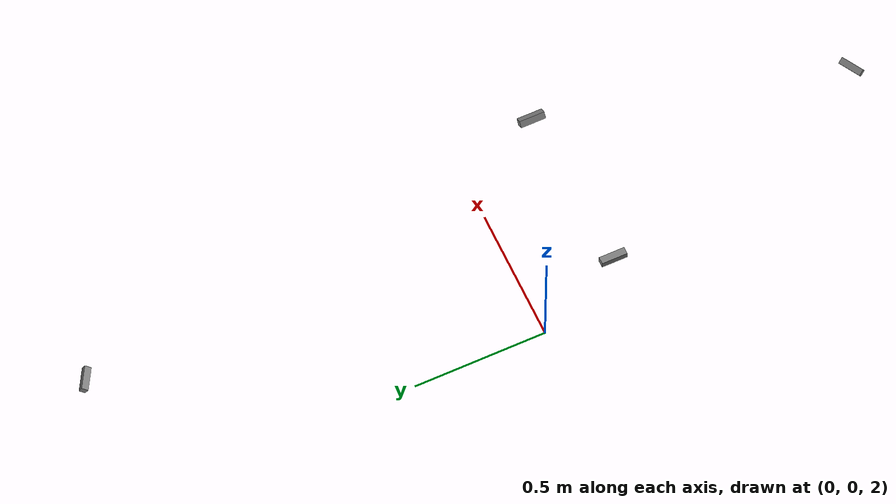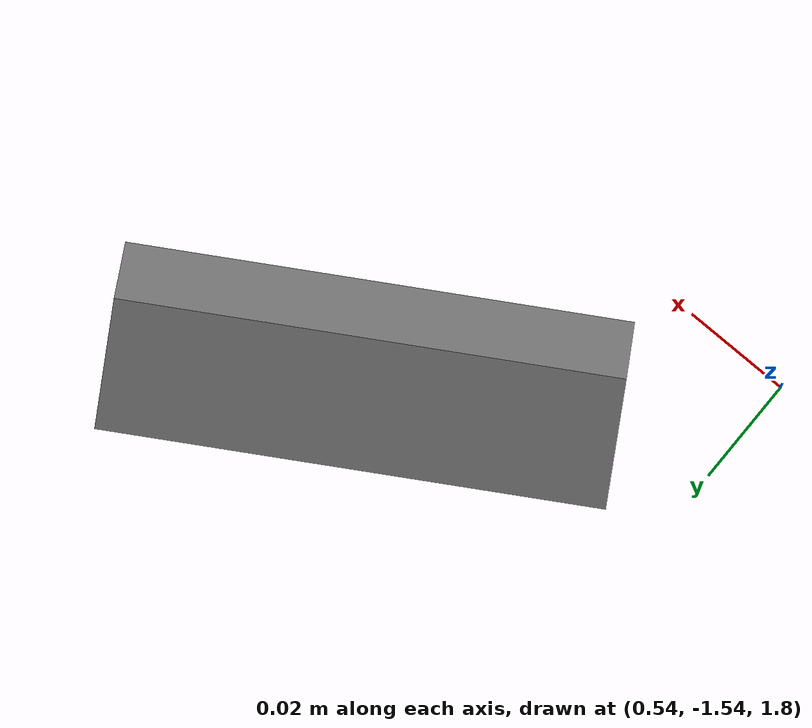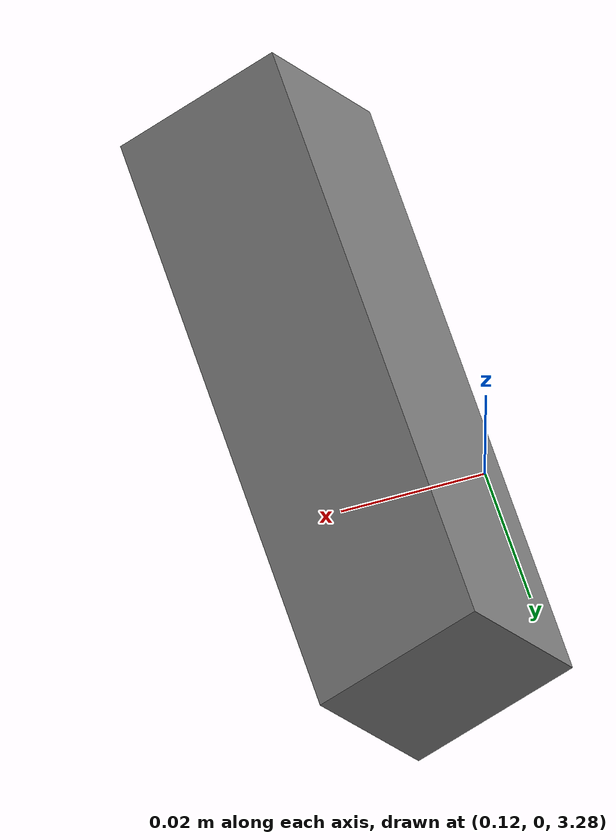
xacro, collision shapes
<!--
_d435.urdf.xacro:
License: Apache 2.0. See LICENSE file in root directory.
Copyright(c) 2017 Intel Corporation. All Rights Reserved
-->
<?xml version="1.0"?>
<robot name="triple_camera_set" xmlns:xacro="http://ros.org/wiki/xacro">
  <xacro:arg name="use_nominal_extrinsics" default="false"/>
  <xacro:arg name="add_plug" default="false" />
  <xacro:arg name="use_mesh" default="true" />
  <xacro:arg name="publish_pointcloud" default="true" />
  <xacro:include filename="$(find realsense_gazebo_plugin)/urdf/_d435.urdf.xacro" />

  <link name="world" />
  <joint name="world_joint" type="fixed">
     <parent link="world" />
     <child link = "base_link" />
     <origin xyz="0.0 0.0 0.0" rpy="0.0 0.0 0.0" />
  </joint>
  <link name="base_link" />

  <!-- left camera -->
  <xacro:sensor_d435 parent="base_link" name="camera_left" topics_ns="camera_left" use_nominal_extrinsics="$(arg use_nominal_extrinsics)" add_plug="$(arg add_plug)" use_mesh="$(arg use_mesh)" publish_pointcloud="$(arg publish_pointcloud)">
    <origin xyz="0.6 -1.5  1.8" rpy="0.0 0.45 2.1"/>
  </xacro:sensor_d435>

  <!-- right camera -->
  <xacro:sensor_d435 parent="base_link" name="camera_right" topics_ns="camera_right" use_nominal_extrinsics="$(arg use_nominal_extrinsics)" add_plug="$(arg add_plug)" use_mesh="$(arg use_mesh)" publish_pointcloud="$(arg publish_pointcloud)">
    <origin xyz="0.6 1.5 1.8" rpy="0.0 0.45 -2.1"/>
  </xacro:sensor_d435>

  <!-- top camera -->
  <xacro:sensor_d435 parent="base_link" name="camera_top" topics_ns="camera_top" use_nominal_extrinsics="$(arg use_nominal_extrinsics)" add_plug="$(arg add_plug)" use_mesh="$(arg use_mesh)" publish_pointcloud="$(arg publish_pointcloud)">
    <origin xyz="-0.5 0 3.4" rpy="0 1.57 0"/>
  </xacro:sensor_d435>

  <!-- top front camera -->
  <xacro:sensor_d435 parent="base_link" name="camera_top_front" topics_ns="camera_top_front" use_nominal_extrinsics="$(arg use_nominal_extrinsics)" add_plug="$(arg add_plug)" use_mesh="$(arg use_mesh)" publish_pointcloud="$(arg publish_pointcloud)">
    <origin xyz="0.15 0 3.3" rpy="0 1.0 -3.14"/>
  </xacro:sensor_d435>

  <gazebo>
    <!-- plugin to publish GT 3D bounding boxes to env node -->
    <plugin filename="libgazebo_ros_bbox_3d_plugin.so " name="gazebo_ros_bbox_3d_plugin">
      <updatePeriod>1.0</updatePeriod>
      <links_to_publish>
        <link>cabinet::drawer_0</link>
        <link>cabinet::drawer_1</link>
        <link>cabinet::drawer_2</link>
        <link>cabinet::drawer_3</link>
      </links_to_publish>
    </plugin>
  </gazebo>

</robot>

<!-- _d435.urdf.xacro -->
<robot name="sensor_d435" xmlns:xacro="http://ros.org/wiki/xacro">
  <!--File includes-->
  <xacro:include filename="$(find realsense_gazebo_plugin)/urdf/_d435.gazebo.xacro"/>

  <xacro:macro name="sensor_d435" params="name:=camera topics_ns:=camera parent *origin">
    <xacro:property name="M_PI" value="3.1415926535897931" />

    <!-- The following values are approximate, and the camera node
     publishing TF values with actual calibrated camera extrinsic values -->
    <xacro:property name="d435_cam_depth_to_left_ir_offset" value="0.0"/>
    <xacro:property name="d435_cam_depth_to_right_ir_offset" value="-0.050"/>
    <xacro:property name="d435_cam_depth_to_color_offset" value="0.015"/>

    <!-- The following values model the aluminum peripherial case for the
  	D435 camera, with the camera joint represented by the actual
  	peripherial camera tripod mount -->
    <xacro:property name="d435_cam_width" value="0.090"/>
    <xacro:property name="d435_cam_height" value="0.025"/>
    <xacro:property name="d435_cam_depth" value="0.02505"/>
    <xacro:property name="d435_cam_mount_from_center_offset" value="0.0149"/>

    <!-- The following offset is relative the the physical D435 camera peripherial
  	camera tripod mount -->
    <xacro:property name="d435_cam_depth_px" value="${d435_cam_mount_from_center_offset}"/>
    <xacro:property name="d435_cam_depth_py" value="0.0175"/>
    <xacro:property name="d435_cam_depth_pz" value="${d435_cam_height/2}"/>

    <material name="${name}_aluminum">
	  <color rgba="0.5 0.5 0.5 1"/>
    </material>

    <!-- camera body, with origin at bottom screw mount -->
    <joint name="${name}_joint" type="fixed">
      <xacro:insert_block name="origin" />
      <parent link="${parent}"/>
      <child link="${name}_bottom_screw_frame" />
    </joint>
    <link name="${name}_bottom_screw_frame"/>

    <joint name="${name}_link_joint" type="fixed">
      <origin xyz="0 ${d435_cam_depth_py} ${d435_cam_depth_pz}" rpy="0 0 0"/>
      <parent link="${name}_bottom_screw_frame"/>
      <child link="${name}_link" />
    </joint>

    <link name="${name}_link">
      <visual>
      <origin xyz="${d435_cam_mount_from_center_offset} ${-d435_cam_depth_py} 0" rpy="${M_PI/2} 0 ${M_PI/2}"/>
        <geometry>
          <mesh filename="package://realsense2_description/meshes/d435.dae" />
        </geometry>
        <material name="${name}_aluminum"/>
      </visual>
      <collision>
        <origin xyz="0 ${-d435_cam_depth_py} 0" rpy="0 0 0"/>
        <geometry>
        <box size="${d435_cam_depth} ${d435_cam_width} ${d435_cam_height}"/>
        </geometry>
      </collision>
      <inertial>
        <!-- The following are not reliable values, and should not be used for modeling -->
        <mass value="0.564" />
        <origin xyz="0 0 0" />
        <inertia ixx="0.003881243" ixy="0.0" ixz="0.0" iyy="0.000498940" iyz="0.0" izz="0.003879257" />
      </inertial>
    </link>

    <!-- camera depth joints and links -->
    <joint name="${name}_depth_joint" type="fixed">
      <origin xyz="0 0 0" rpy="0 0 0"/>
      <parent link="${name}_link"/>
      <child link="${name}_depth_frame" />
    </joint>
    <link name="${name}_depth_frame"/>

    <joint name="${name}_depth_optical_joint" type="fixed">
      <origin xyz="0 0 0" rpy="${-M_PI/2} 0 ${-M_PI/2}" />
      <parent link="${name}_depth_frame" />
      <child link="${name}_depth_optical_frame" />
    </joint>
    <link name="${name}_depth_optical_frame"/>

    <!-- camera left IR joints and links -->
    <joint name="${name}_left_ir_joint" type="fixed">
      <origin xyz="0 ${d435_cam_depth_to_left_ir_offset} 0" rpy="0 0 0" />
      <parent link="${name}_depth_frame" />
      <child link="${name}_left_ir_frame" />
    </joint>
    <link name="${name}_left_ir_frame"/>

    <joint name="${name}_left_ir_optical_joint" type="fixed">
      <origin xyz="0 0 0" rpy="${-M_PI/2} 0 ${-M_PI/2}" />
      <parent link="${name}_left_ir_frame" />
      <child link="${name}_left_ir_optical_frame" />
    </joint>
    <link name="${name}_left_ir_optical_frame"/>

    <!-- camera right IR joints and links -->
    <joint name="${name}_right_ir_joint" type="fixed">
      <origin xyz="0 ${d435_cam_depth_to_right_ir_offset} 0" rpy="0 0 0" />
      <parent link="${name}_depth_frame" />
      <child link="${name}_right_ir_frame" />
    </joint>
    <link name="${name}_right_ir_frame"/>

    <joint name="${name}_right_ir_optical_joint" type="fixed">
      <origin xyz="0 0 0" rpy="${-M_PI/2} 0 ${-M_PI/2}" />
      <parent link="${name}_right_ir_frame" />
      <child link="${name}_right_ir_optical_frame" />
    </joint>
    <link name="${name}_right_ir_optical_frame"/>

    <!-- camera color joints and links -->
    <joint name="${name}_color_joint" type="fixed">
      <origin xyz="0 ${d435_cam_depth_to_color_offset} 0" rpy="0 0 0" />
      <parent link="${name}_depth_frame" />
      <child link="${name}_color_frame" />
    </joint>
    <link name="${name}_color_frame"/>

    <joint name="${name}_color_optical_joint" type="fixed">
      <origin xyz="0 0 0" rpy="${-M_PI/2} 0 ${-M_PI/2}" />
      <parent link="${name}_color_frame" />
      <child link="${name}_color_optical_frame" />
    </joint>
    <link name="${name}_color_optical_frame"/>

    <!-- Realsense Gazebo Plugin -->
    <xacro:gazebo_d435 camera_name="${name}" reference_link="${name}_link" topics_ns="${topics_ns}" depth_optical_frame="${name}_depth_optical_frame" color_optical_frame="${name}_color_optical_frame" infrared1_optical_frame="${name}_left_ir_optical_frame" infrared2_optical_frame="${name}_right_ir_optical_frame"/>

  </xacro:macro>
</robot>
